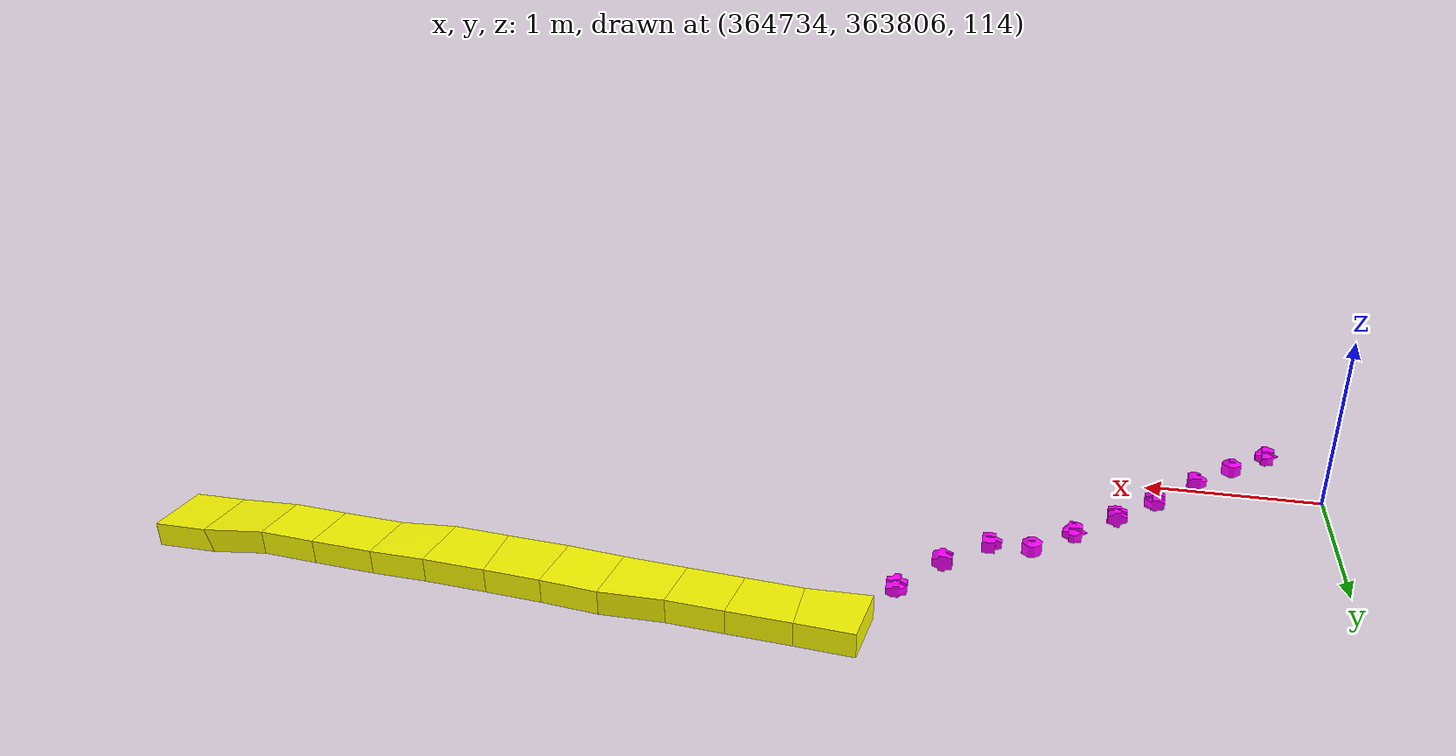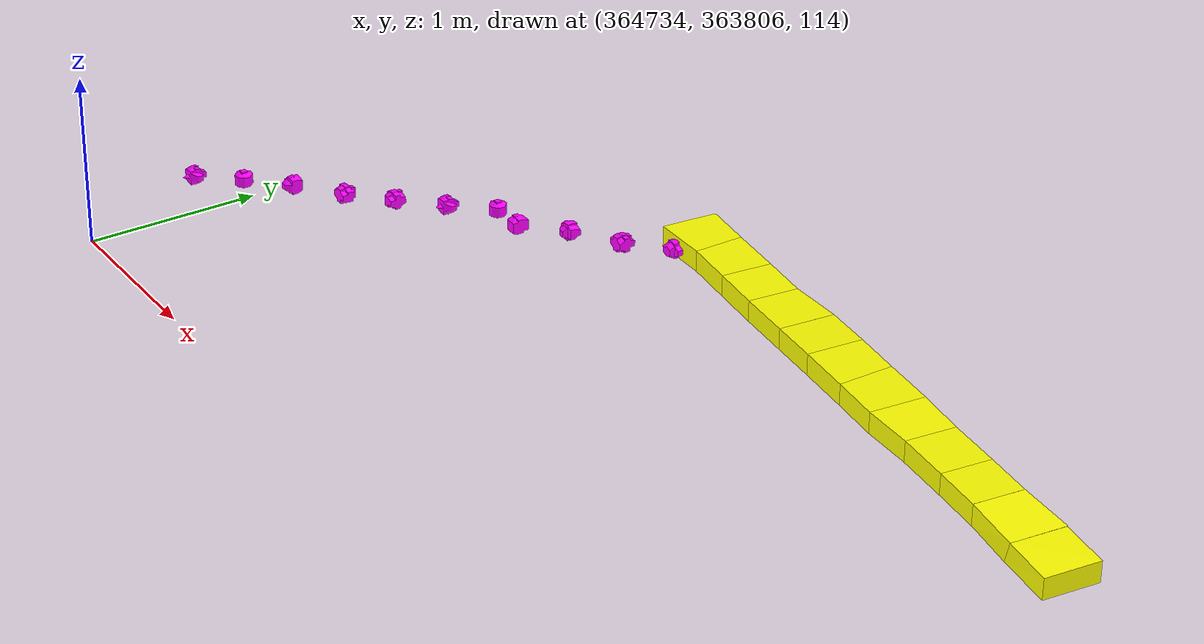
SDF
<sdf version="1.5">
 <world name="default">
  <include><uri>model://sun</uri></include>
  <model name="road_segment_302">
   <static>true</static>
   <pose>364736.48 363808.4 114.46 0 -0.0 -0.09065988721863681</pose>
   <link name="link">
    <collision name="collision">
     <geometry><box><size>0.29454296046036466 0.3 0.12</size></box></geometry>
     <surface><friction><ode><mu>0.02</mu><mu2>0.02</mu2></ode></friction></surface>
    </collision>
    <visual name="visual">
     <geometry><box><size>0.29454296046036466 0.3 0.12</size></box></geometry>
     <material><ambient>1 1 0 1</ambient><diffuse>1 1 0 1</diffuse><emissive>1 1 0 1</emissive></material>
    </visual>
   </link>
  </model>
  <model name="road_segment_303">
   <static>true</static>
   <pose>364736.7733333333 363808.3733333333 114.46 0 -0.0 -0.09065988721863681</pose>
   <link name="link">
    <collision name="collision">
     <geometry><box><size>0.29454296046036466 0.3 0.12</size></box></geometry>
     <surface><friction><ode><mu>0.02</mu><mu2>0.02</mu2></ode></friction></surface>
    </collision>
    <visual name="visual">
     <geometry><box><size>0.29454296046036466 0.3 0.12</size></box></geometry>
     <material><ambient>1 1 0 1</ambient><diffuse>1 1 0 1</diffuse><emissive>1 1 0 1</emissive></material>
    </visual>
   </link>
  </model>
  <model name="road_segment_304">
   <static>true</static>
   <pose>364737.06666666665 363808.3466666667 114.46 0 -0.0 -0.09065988721863681</pose>
   <link name="link">
    <collision name="collision">
     <geometry><box><size>0.29454296046036466 0.3 0.12</size></box></geometry>
     <surface><friction><ode><mu>0.02</mu><mu2>0.02</mu2></ode></friction></surface>
    </collision>
    <visual name="visual">
     <geometry><box><size>0.29454296046036466 0.3 0.12</size></box></geometry>
     <material><ambient>1 1 0 1</ambient><diffuse>1 1 0 1</diffuse><emissive>1 1 0 1</emissive></material>
    </visual>
   </link>
  </model>
  <model name="road_segment_305">
   <static>true</static>
   <pose>364737.36 363808.31999999995 114.46166666659052 0 -0.011316484639800596 -0.09065988721863681</pose>
   <link name="link">
    <collision name="collision">
     <geometry><box><size>0.2945618214685192 0.3 0.12</size></box></geometry>
     <surface><friction><ode><mu>0.02</mu><mu2>0.02</mu2></ode></friction></surface>
    </collision>
    <visual name="visual">
     <geometry><box><size>0.2945618214685192 0.3 0.12</size></box></geometry>
     <material><ambient>1 1 0 1</ambient><diffuse>1 1 0 1</diffuse><emissive>1 1 0 1</emissive></material>
    </visual>
   </link>
  </model>
  <model name="road_segment_306">
   <static>true</static>
   <pose>364737.6533333333 363808.29333333333 114.46666666659053 0 -0.02263007313011774 -0.09065988721863681</pose>
   <link name="link">
    <collision name="collision">
     <geometry><box><size>0.2946183972586083 0.3 0.12</size></box></geometry>
     <surface><friction><ode><mu>0.02</mu><mu2>0.02</mu2></ode></friction></surface>
    </collision>
    <visual name="visual">
     <geometry><box><size>0.2946183972586083 0.3 0.12</size></box></geometry>
     <material><ambient>1 1 0 1</ambient><diffuse>1 1 0 1</diffuse><emissive>1 1 0 1</emissive></material>
    </visual>
   </link>
  </model>
  <model name="road_segment_307">
   <static>true</static>
   <pose>364737.94666666666 363808.2666666666 114.47000000000001 0 -0.0 -0.09065988721863681</pose>
   <link name="link">
    <collision name="collision">
     <geometry><box><size>0.29454296046036466 0.3 0.12</size></box></geometry>
     <surface><friction><ode><mu>0.02</mu><mu2>0.02</mu2></ode></friction></surface>
    </collision>
    <visual name="visual">
     <geometry><box><size>0.29454296046036466 0.3 0.12</size></box></geometry>
     <material><ambient>1 1 0 1</ambient><diffuse>1 1 0 1</diffuse><emissive>1 1 0 1</emissive></material>
    </visual>
   </link>
  </model>
  <model name="road_segment_308">
   <static>true</static>
   <pose>364738.24 363808.24 114.47000000000001 0 4.824713750837903e-14 -0.09065988702182812</pose>
   <link name="link">
    <collision name="collision">
     <geometry><box><size>0.29454296045509476 0.3 0.12</size></box></geometry>
     <surface><friction><ode><mu>0.02</mu><mu2>0.02</mu2></ode></friction></surface>
    </collision>
    <visual name="visual">
     <geometry><box><size>0.29454296045509476 0.3 0.12</size></box></geometry>
     <material><ambient>1 1 0 1</ambient><diffuse>1 1 0 1</diffuse><emissive>1 1 0 1</emissive></material>
    </visual>
   </link>
  </model>
  <model name="road_segment_309">
   <static>true</static>
   <pose>364738.5333333333 363808.2133333334 114.46499999999999 0 0.03393786911881735 -0.09065988721863681</pose>
   <link name="link">
    <collision name="collision">
     <geometry><box><size>0.29471266609488644 0.3 0.12</size></box></geometry>
     <surface><friction><ode><mu>0.02</mu><mu2>0.02</mu2></ode></friction></surface>
    </collision>
    <visual name="visual">
     <geometry><box><size>0.29471266609488644 0.3 0.12</size></box></geometry>
     <material><ambient>1 1 0 1</ambient><diffuse>1 1 0 1</diffuse><emissive>1 1 0 1</emissive></material>
    </visual>
   </link>
  </model>
  <model name="road_segment_310">
   <static>true</static>
   <pose>364738.82666666666 363808.18666666665 114.46 0 -0.0 -0.09065988721863681</pose>
   <link name="link">
    <collision name="collision">
     <geometry><box><size>0.29454296046036466 0.3 0.12</size></box></geometry>
     <surface><friction><ode><mu>0.02</mu><mu2>0.02</mu2></ode></friction></surface>
    </collision>
    <visual name="visual">
     <geometry><box><size>0.29454296046036466 0.3 0.12</size></box></geometry>
     <material><ambient>1 1 0 1</ambient><diffuse>1 1 0 1</diffuse><emissive>1 1 0 1</emissive></material>
    </visual>
   </link>
  </model>
  <model name="road_segment_311">
   <static>true</static>
   <pose>364739.12 363808.16000000003 114.46 0 -0.0 -0.09065988721863681</pose>
   <link name="link">
    <collision name="collision">
     <geometry><box><size>0.29454296046036466 0.3 0.12</size></box></geometry>
     <surface><friction><ode><mu>0.02</mu><mu2>0.02</mu2></ode></friction></surface>
    </collision>
    <visual name="visual">
     <geometry><box><size>0.29454296046036466 0.3 0.12</size></box></geometry>
     <material><ambient>1 1 0 1</ambient><diffuse>1 1 0 1</diffuse><emissive>1 1 0 1</emissive></material>
    </visual>
   </link>
  </model>
  <model name="road_segment_312">
   <static>true</static>
   <pose>364739.41333333333 363808.1333333333 114.44800000031549 0 0.08130255488587577 -0.09065988721863681</pose>
   <link name="link">
    <collision name="collision">
     <geometry><box><size>0.29551912886726717 0.3 0.12</size></box></geometry>
     <surface><friction><ode><mu>0.02</mu><mu2>0.02</mu2></ode></friction></surface>
    </collision>
    <visual name="visual">
     <geometry><box><size>0.29551912886726717 0.3 0.12</size></box></geometry>
     <material><ambient>1 1 0 1</ambient><diffuse>1 1 0 1</diffuse><emissive>1 1 0 1</emissive></material>
    </visual>
   </link>
  </model>
  <model name="road_segment_313">
   <static>true</static>
   <pose>364739.70666666667 363808.1066666667 114.42800000031549 0 0.05426811322907705 -0.09065988721863681</pose>
   <link name="link">
    <collision name="collision">
     <geometry><box><size>0.2949772119621232 0.3 0.12</size></box></geometry>
     <surface><friction><ode><mu>0.02</mu><mu2>0.02</mu2></ode></friction></surface>
    </collision>
    <visual name="visual">
     <geometry><box><size>0.2949772119621232 0.3 0.12</size></box></geometry>
     <material><ambient>1 1 0 1</ambient><diffuse>1 1 0 1</diffuse><emissive>1 1 0 1</emissive></material>
    </visual>
   </link>
  </model>
  <model name="straight_marker_182">
   <static>true</static>
   <pose>364734.44 363806.44 114.49 0 0 0</pose>
   <link name="link">
    <visual name="visual">
     <geometry><sphere><radius>0.05</radius></sphere></geometry>
     <material><ambient>1 0 1 1</ambient><diffuse>1 0 1 1</diffuse><emissive>1 0 1 1</emissive></material>
    </visual>
   </link>
  </model>
  <model name="straight_marker_183">
   <static>true</static>
   <pose>364734.64 363806.64 114.4999999998574 0 0 0</pose>
   <link name="link">
    <visual name="visual">
     <geometry><sphere><radius>0.05</radius></sphere></geometry>
     <material><ambient>1 0 1 1</ambient><diffuse>1 0 1 1</diffuse><emissive>1 0 1 1</emissive></material>
    </visual>
   </link>
  </model>
  <model name="straight_marker_184">
   <static>true</static>
   <pose>364734.84 363806.84 114.5 0 0 0</pose>
   <link name="link">
    <visual name="visual">
     <geometry><sphere><radius>0.05</radius></sphere></geometry>
     <material><ambient>1 0 1 1</ambient><diffuse>1 0 1 1</diffuse><emissive>1 0 1 1</emissive></material>
    </visual>
   </link>
  </model>
  <model name="straight_marker_185">
   <static>true</static>
   <pose>364735.04 363807.04 114.4800000002561 0 0 0</pose>
   <link name="link">
    <visual name="visual">
     <geometry><sphere><radius>0.05</radius></sphere></geometry>
     <material><ambient>1 0 1 1</ambient><diffuse>1 0 1 1</diffuse><emissive>1 0 1 1</emissive></material>
    </visual>
   </link>
  </model>
  <model name="straight_marker_186">
   <static>true</static>
   <pose>364735.24 363807.24 114.47999999999999 0 0 0</pose>
   <link name="link">
    <visual name="visual">
     <geometry><sphere><radius>0.05</radius></sphere></geometry>
     <material><ambient>1 0 1 1</ambient><diffuse>1 0 1 1</diffuse><emissive>1 0 1 1</emissive></material>
    </visual>
   </link>
  </model>
  <model name="straight_marker_187">
   <static>true</static>
   <pose>364735.44 363807.44 114.47999999999999 0 0 0</pose>
   <link name="link">
    <visual name="visual">
     <geometry><sphere><radius>0.05</radius></sphere></geometry>
     <material><ambient>1 0 1 1</ambient><diffuse>1 0 1 1</diffuse><emissive>1 0 1 1</emissive></material>
    </visual>
   </link>
  </model>
  <model name="straight_marker_188">
   <static>true</static>
   <pose>364735.64 363807.64 114.48999999985448 0 0 0</pose>
   <link name="link">
    <visual name="visual">
     <geometry><sphere><radius>0.05</radius></sphere></geometry>
     <material><ambient>1 0 1 1</ambient><diffuse>1 0 1 1</diffuse><emissive>1 0 1 1</emissive></material>
    </visual>
   </link>
  </model>
  <model name="straight_marker_189">
   <static>true</static>
   <pose>364735.84 363807.64 114.49 0 0 0</pose>
   <link name="link">
    <visual name="visual">
     <geometry><sphere><radius>0.05</radius></sphere></geometry>
     <material><ambient>1 0 1 1</ambient><diffuse>1 0 1 1</diffuse><emissive>1 0 1 1</emissive></material>
    </visual>
   </link>
  </model>
  <model name="straight_marker_190">
   <static>true</static>
   <pose>364736.04 363807.84 114.49 0 0 0</pose>
   <link name="link">
    <visual name="visual">
     <geometry><sphere><radius>0.05</radius></sphere></geometry>
     <material><ambient>1 0 1 1</ambient><diffuse>1 0 1 1</diffuse><emissive>1 0 1 1</emissive></material>
    </visual>
   </link>
  </model>
  <model name="straight_marker_191">
   <static>true</static>
   <pose>364736.24 363808.04 114.45000000052386 0 0 0</pose>
   <link name="link">
    <visual name="visual">
     <geometry><sphere><radius>0.05</radius></sphere></geometry>
     <material><ambient>1 0 1 1</ambient><diffuse>1 0 1 1</diffuse><emissive>1 0 1 1</emissive></material>
    </visual>
   </link>
  </model>
  <model name="straight_marker_192">
   <static>true</static>
   <pose>364736.44 363808.24 114.44999999999999 0 0 0</pose>
   <link name="link">
    <visual name="visual">
     <geometry><sphere><radius>0.05</radius></sphere></geometry>
     <material><ambient>1 0 1 1</ambient><diffuse>1 0 1 1</diffuse><emissive>1 0 1 1</emissive></material>
    </visual>
   </link>
  </model>
 </world>
</sdf>
